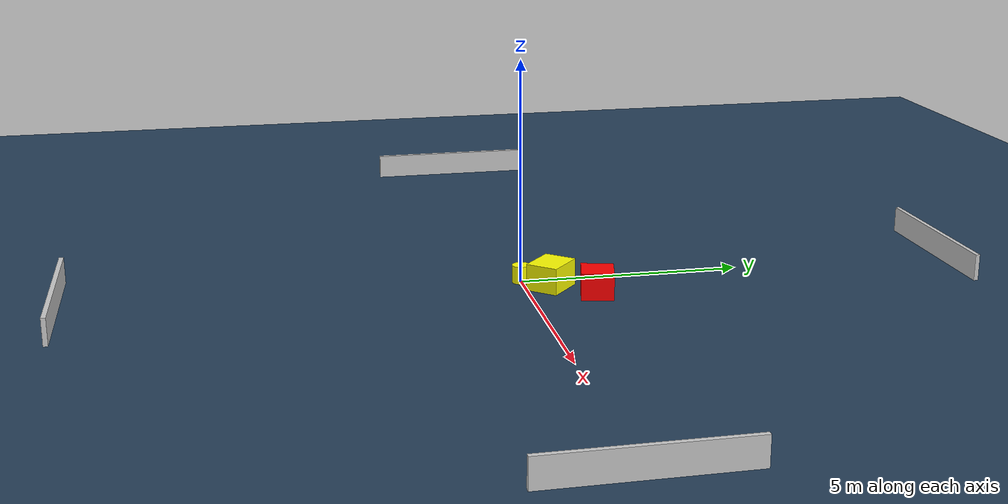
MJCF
<?xml version="1.0" ?>
<mujoco model="generated_environment">
  <option timestep="0.01" integrator="RK4" cone="elliptic"/>
  <default>
    <geom density="1"/>
  </default>
  <asset>
    <texture builtin="gradient" height="3072" name="skybox" rgb1="0.3 0.5 0.7" rgb2="0 0 0" type="skybox" width="512"/>
    <texture builtin="checker" height="300" name="groundplane" rgb1="0.2 0.3 0.4" rgb2="0.1 0.2 0.3" type="2d" width="300"/>
    <material name="groundplane" reflectance="0.2" texrepeat="5 5" texture="groundplane"/>
  </asset>
  <worldbody>
    <light dir="0 0 -1" directional="true" pos="0 0 1.5"/>
    <geom condim="3" friction="0.5 0.005 0.001" material="groundplane" name="floor" pos="0 0 0" size="0 0 0.05" type="plane"/>
    <body name="walls">
      <geom name="wall_1" condim="4" pos="-10.0 0.0 0.3" rgba="0.800000011920929 0.800000011920929 0.800000011920929 1.0" size="0.05 2.0 0.3" type="box"/>
      <geom name="wall_2" condim="4" pos="10.0 0.0 0.3" rgba="0.800000011920929 0.800000011920929 0.800000011920929 1.0" size="0.05 2.0 0.3" type="box"/>
      <geom name="wall_3" condim="4" pos="0.0 -10.0 0.3" rgba="0.800000011920929 0.800000011920929 0.800000011920929 1.0" size="2.0 0.05 0.3" type="box"/>
      <geom name="wall_4" condim="4" pos="0.0 10.0 0.3" rgba="0.800000011920929 0.800000011920929 0.800000011920929 1.0" size="2.0 0.05 0.3" type="box"/>
    </body>
    <body name="robot">
      <joint name="joint_x" type="slide" pos="0 0 0" axis="1 0 0"/>
      <joint name="joint_y" type="slide" pos="0 0 0" axis="0 1 0"/>
      <geom name="robot" type="cylinder" pos="0.0 0.0 0.2" size="0.2 0.2 0.0" mass="5.0" friction="1.0 0.005 0.0001" condim="4" rgba="1.0 1.0 0.0 1.0"/>
    </body>
    <body name="obstacle_1_movable">
      <geom name="obstacle_1_movable" condim="4" pos="0.5028261442727757 0.5716748467670505 0.3" euler="0 0 138.74551257474636" friction="0.0 0.005 0.001" rgba="1.0 1.0 0.0 1.0" size="0.4464180712906682 0.3672712754340479 0.3" type="box" mass="0.1"/>
      <joint type="free"/>
    </body>
    <body name="obstacle_2_static">
      <geom name="obstacle_2_static" condim="4" pos="1.2175698154688077 1.4388789107708222 0.3" euler="0 0 77.02193138019243" friction="0.0 0.005 0.001" rgba="1.0 0.0 0.0 1.0" size="0.35778506847973524 0.3866408363095254 0.3" type="box"/>
    </body>
  </worldbody>
  <actuator>
    <motor name="actuator_x" joint="joint_x" gear="1" ctrlrange="-1 1"/>
    <motor name="actuator_y" joint="joint_y" gear="1" ctrlrange="-1 1"/>
  </actuator>
</mujoco>
